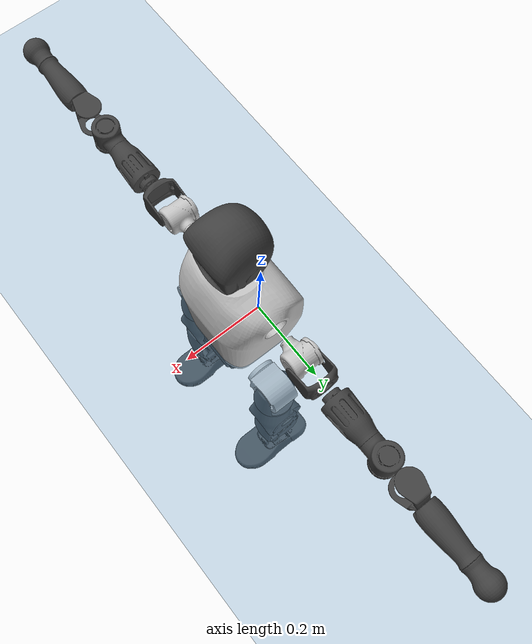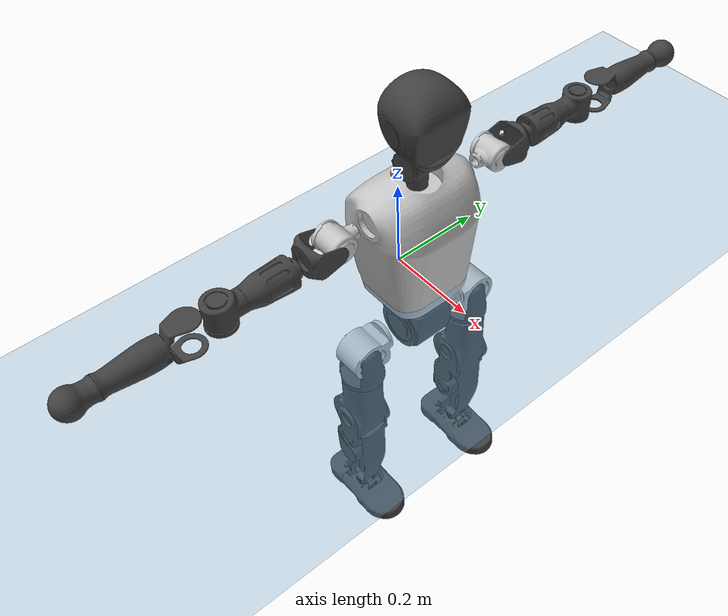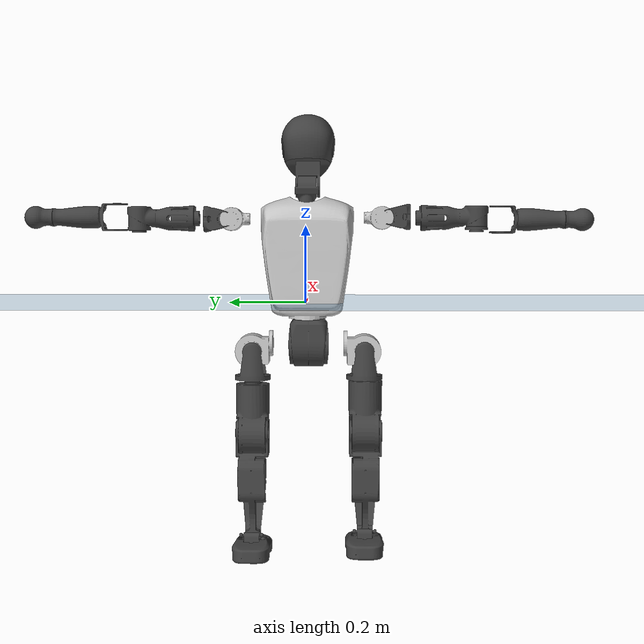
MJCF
<mujoco model="T1">
  <compiler angle="radian" assetdir="assets" balanceinertia="true" inertiafromgeom="false"/>

  <option timestep="0.005" density="1.2" viscosity="2e-05"/>

  <size nkey="1"/>

  <visual>
    <quality shadowsize="8192"/>
    <map shadowclip="0.5"/>
  </visual>

  <default>
    <default class="/">
      <joint armature="0.01" damping="0.01" frictionloss="0.1"/>
      <geom contype="0" conaffinity="0" group="1" solref="-1000 -80"/>
      <site size="0.01 0.005 0.005" group="5"/>
      <general forcelimited="true" biastype="affine" gainprm="25" biasprm="0 -25 -0.6"/>
      <default class="t1">
        <geom rgba="0.25 0.25 0.25 1"/>
        <default class="visual">
          <geom type="mesh" group="2"/>
        </default>
        <default class="collision">
          <geom group="3"/>
        </default>
        <default class="foot">
          <geom size="0.1115 0.05 0.015" type="box" condim="6" group="4" priority="1" solimp="0.015 1 0.015"/>
        </default>
        <default class="reward_collision_sphere">
          <geom group="5" rgba="1 0 0 1"/>
        </default>
      </default>
    </default>
  </default>

  <asset>
    <texture type="skybox" colorspace="auto" name="//unnamed_texture_0" builtin="gradient" rgb1="0.95 0.95 0.95" rgb2="0.95 0.95 0.95" width="100" height="600"/>
    <texture type="2d" colorspace="auto" name="texplane" builtin="checker" rgb1="0.345 0.575 0.748" rgb2="0.345 0.575 0.748" markrgb="1 1 1" width="512" height="512"/>
    <material name="MatPlane" class="/" texture="texplane" texuniform="true" texrepeat="2 2" specular="0.9"/>
    <mesh name="Trunk" class="/" file="Trunk.stl"/>
    <mesh name="H1" class="/" file="H1.stl"/>
    <mesh name="H2" class="/" file="H2.stl"/>
    <mesh name="AL1" class="/" file="AL1.stl"/>
    <mesh name="AL2" class="/" file="AL2.stl"/>
    <mesh name="AL3" class="/" file="AL3.stl"/>
    <mesh name="left_hand_link" class="/" file="left_hand_link.stl"/>
    <mesh name="AR1" class="/" file="AR1.stl"/>
    <mesh name="AR2" class="/" file="AR2.stl"/>
    <mesh name="AR3" class="/" file="AR3.stl"/>
    <mesh name="right_hand_link" class="/" file="right_hand_link.stl"/>
    <mesh name="Waist" class="/" file="Waist.stl"/>
    <mesh name="Hip_Pitch_Left" class="/" file="Hip_Pitch_Left.stl"/>
    <mesh name="Hip_Roll_Left" class="/" file="Hip_Roll_Left.stl"/>
    <mesh name="Hip_Yaw_Left" class="/" file="Hip_Yaw_Left.stl"/>
    <mesh name="Shank_Left" class="/" file="Shank_Left.stl"/>
    <mesh name="Ankle_Cross_Left" class="/" file="Ankle_Cross_Left.stl"/>
    <mesh name="left_foot_link" class="/" file="left_foot_link.stl"/>
    <mesh name="Hip_Pitch_Right" class="/" file="Hip_Pitch_Right.stl"/>
    <mesh name="Hip_Roll_Right" class="/" file="Hip_Roll_Right.stl"/>
    <mesh name="Hip_Yaw_Right" class="/" file="Hip_Yaw_Right.stl"/>
    <mesh name="Shank_Right" class="/" file="Shank_Right.stl"/>
    <mesh name="Ankle_Cross_Right" class="/" file="Ankle_Cross_Right.stl"/>
    <mesh name="right_foot_link" class="/" file="right_foot_link.stl"/>
  </asset>

  <worldbody>
    <geom name="floor" class="/" size="100 100 0.125" type="plane" group="0" material="MatPlane"/>
    <light name="toplight_shadow" class="/" pos="0 0 5" dir="0.0990148 0.0990148 -0.990148" type="directional" ambient="0.04 0.04 0.04" diffuse="0.55 0.55 0.55" specular="0.12 0.12 0.12"/>
    <light name="toplight_fill" class="/" pos="0 0 5" dir="0.0990148 0.0990148 -0.990148" type="directional" castshadow="false" ambient="0.04 0.04 0.04" diffuse="0.3 0.3 0.3" specular="0.08 0.08 0.08"/>
    <body name="trunk" childclass="t1" pos="0.000430104 -0.00235645 -0.00248347" quat="1 0.000150513 0.000112768 -6.45154e-05">
      <inertial pos="0.0543793 -0.00425567 0.103725" quat="0.999962 -0.000625808 -0.00850694 0.00167752" mass="16.7364" diaginertia="0.0815756 0.435574 0.0551865"/>
      <joint name="//unnamed_joint_0" type="free" armature="0" damping="0" frictionloss="0"/>
      <geom name="//unnamed_geom_1" class="visual" rgba="0.76 0.76 0.76 1" mesh="Trunk"/>
      <geom name="//unnamed_geom_2" class="collision" size="0.0852509 0.113668 0.170502" pos="0.0589046 0 0.12114" type="box"/>
      <geom name="//unnamed_geom_3" class="reward_collision_sphere" size="0.130718" pos="0.0589046 0 0.10095"/>
      <geom name="//unnamed_geom_4" class="reward_collision_sphere" size="0.0170502" pos="0.0589046 0.120597 0"/>
      <geom name="//unnamed_geom_5" class="reward_collision_sphere" size="0.0170502" pos="0.0589046 -0.120597 0"/>
      <geom name="//unnamed_geom_6" class="reward_collision_sphere" size="0.0170502" pos="0.0589046 0.15181 0.181711"/>
      <geom name="//unnamed_geom_7" class="reward_collision_sphere" size="0.0170502" pos="0.0589046 -0.15181 0.181711"/>
      <site name="imu" pos="-0.00562622 -0.00882331 0.0129203" size="0.0113668"/>
      <camera name="track" pos="0 -2.83757 0" quat="0.707107 0.707107 0 0" mode="trackcom"/>
      <camera name="ego_camera" pos="0.119773 0 0.423992" quat="-0.5 -0.5 0.5 0.5"/>
      <body name="H1" pos="0.0583443 0.00166366 0.242991" quat="1 9.67165e-05 6.7512e-05 -0.000115999">
        <inertial pos="-0.000840761 -0.00636381 0.0556775" quat="0.769157 -0.0179764 0.00535397 0.638785" mass="0.65301" diaginertia="0.000228058 0.00127822 0.000154608"/>
        <joint name="AAHead_yaw" pos="0 0 0" axis="0.00327588 -0.0099035 0.999946" range="-1.57038 1.62255" armature="0.0109598" damping="0.00918209" frictionloss="0.14085"/>
        <geom name="//unnamed_geom_8" class="visual" mesh="H1"/>
        <body name="H2" pos="0.00173473 -0.00252509 0.0637003" quat="1 -6.84993e-05 9.78226e-06 0.000203552">
          <inertial pos="0.00439204 0.00453976 0.09713" quat="0.989268 0.105407 -0.0601789 -0.0813472" mass="0.927245" diaginertia="0.00185481 0.0111197 0.00180063"/>
          <joint name="Head_pitch" pos="0 0 0" axis="0.00761051 -0.999931 0.00891399" range="-1.22805 0.358786" armature="0.0119266" damping="0.00676881" frictionloss="0.11105"/>
          <geom name="//unnamed_geom_9" class="visual" mesh="H2"/>
          <geom name="//unnamed_geom_10" class="collision" size="0.0909342" pos="0.00981744 0 0.111045"/>
          <geom name="//unnamed_geom_11" class="reward_collision_sphere" size="0.102301" pos="0.0196349 0 0.10095"/>
        </body>
      </body>
      <body name="AL1" pos="0.0566107 0.152232 0.21983" quat="1 -0.000718551 -0.00054653 -0.000123229">
        <inertial pos="-0.0011651 0.0618474 -0.00227811" quat="0.506357 0.490011 -0.515475 0.487625" mass="0.77096" diaginertia="0.00127279 0.00711399 0.000307552"/>
        <joint name="Left_Shoulder_Pitch" pos="0 0 0" axis="-0.0010284 0.999999 0.00125795" range="-3.25229 1.18879" armature="0.011159" damping="0" frictionloss="0.111266"/>
        <geom name="//unnamed_geom_12" class="visual" rgba="0.76 0.76 0.76 1" mesh="AL1"/>
        <body name="AL2" pos="0.00141978 0.0652952 -0.000303267" quat="1 6.81364e-05 -1.63547e-06 6.71762e-06">
          <inertial pos="0.001047 0.049803 0.00117388" quat="0.486151 0.494279 -0.499153 0.5198" mass="0.243179" diaginertia="0.000368043 0.00200844 0.000181155"/>
          <joint name="Left_Shoulder_Roll" pos="0 0 0" axis="-0.999984 0.00506917 -0.00236119" stiffness="0.00141309" range="-1.56437 1.74526" armature="0.0130907" damping="0.0110556" frictionloss="0.0997085"/>
          <geom name="//unnamed_geom_13" class="visual" mesh="AL2"/>
          <body name="AL3" pos="-0.000105167 0.0813469 0.00163511" quat="1 -1.56464e-06 -4.92371e-05 3.39263e-05">
            <inertial pos="0.00316238 0.121679 -0.00103516" quat="0.706806 0.707406 0.000461489 0.00164002" mass="1.46436" diaginertia="0.0111675 0.0744722 0.0006608"/>
            <joint name="Left_Elbow_Pitch" pos="0 0 0" axis="0.00383564 -0.999965 0.00750132" stiffness="0.00527811" range="-2.232 2.21051" armature="0.00993663" damping="0.0115376" frictionloss="0.116397"/>
            <geom name="//unnamed_geom_14" class="visual" mesh="AL3"/>
            <geom name="//unnamed_geom_15" class="collision" size="0.0341003 0.0852509" pos="0 0.0709393 0" quat="0.707105 0.707108 0 0" type="cylinder"/>
            <geom name="//unnamed_geom_16" class="reward_collision_sphere" size="0.0409204"/>
            <body name="left_hand_link" pos="0.00194933 0.205944 0.00369492" quat="0.999999 -0.000515579 0.000275327 -0.000934876">
              <inertial pos="0.00047368 0.153654 0.00152062" quat="0.710437 0.703649 0.00194553 -0.0124024" mass="0.492762" diaginertia="0.00754511 0.0467621 0.00021954"/>
              <joint name="Left_Elbow_Yaw" pos="0 0 0" axis="-0.0097851 0.00209889 0.99995" range="-2.3849 -0.00669744" armature="0.0115385" damping="0.0304008" frictionloss="0.108315"/>
              <geom name="//unnamed_geom_17" class="visual" mesh="left_hand_link"/>
              <geom name="//unnamed_geom_18" class="collision" size="0.0341003 0.0994593" pos="0 0.184442 0" quat="0.707105 0.707108 0 0" type="cylinder"/>
              <geom name="//unnamed_geom_19" class="reward_collision_sphere" size="0.0568339"/>
              <geom name="//unnamed_geom_20" class="reward_collision_sphere" size="0.0397837" pos="0 0.156067 0"/>
              <geom name="//unnamed_geom_21" class="reward_collision_sphere" size="0.0397837" pos="0 0.305039 0"/>
            </body>
          </body>
        </body>
      </body>
      <body name="AR1" pos="0.0590918 -0.149741 0.222879" quat="1 0.000176043 0.000419872 0.000121002">
        <inertial pos="-0.0016312 -0.0645101 0.003011" quat="0.505664 0.500009 -0.510719 0.483179" mass="0.782826" diaginertia="0.00127453 0.00780647 0.00031552"/>
        <joint name="Right_Shoulder_Pitch" pos="0 0 0" axis="0.00443894 -0.999989 -0.00143582" range="-1.21561 3.32565" armature="0.0122006" damping="0.0205588" frictionloss="0.133789"/>
        <geom name="//unnamed_geom_22" class="visual" rgba="0.76 0.76 0.76 1" mesh="AR1"/>
        <body name="AR2" pos="0.0035193 -0.0660835 0.00264013" quat="1 0.000172464 -0.000163024 -0.000704304">
          <inertial pos="0.00259047 -0.0494851 0.00277818" quat="0.512483 0.478585 -0.522889 0.48467" mass="0.245542" diaginertia="0.000381372 0.00209489 0.000192196"/>
          <joint name="Right_Shoulder_Roll" pos="0 0 0" axis="-0.999981 9.41095e-05 -0.00612675" range="-1.73019 1.5824" armature="0.0112146" damping="0.0284516" frictionloss="0.128344"/>
          <geom name="//unnamed_geom_23" class="visual" mesh="AR2"/>
          <body name="AR3" pos="0.00276421 -0.0838149 -0.00229281" quat="1 0.000359563 -0.000222924 -0.000140733">
            <inertial pos="0.00242406 -0.122354 -0.00242868" quat="0.709014 0.705192 -0.000846979 -0.00163265" mass="1.52236" diaginertia="0.0118716 0.0781295 0.000638992"/>
            <joint name="Right_Elbow_Pitch" pos="0 0 0" axis="0.00157486 0.999929 -0.0118498" range="-2.30949 2.31753" armature="0.0114608" damping="0.0107042" frictionloss="0.127265"/>
            <geom name="//unnamed_geom_24" class="visual" mesh="AR3"/>
            <geom name="//unnamed_geom_25" class="collision" size="0.0341003 0.0852509" pos="0 -0.0709393 0" quat="0.707105 0.707108 0 0" type="cylinder"/>
            <geom name="//unnamed_geom_26" class="reward_collision_sphere" size="0.0409204"/>
            <body name="right_hand_link" pos="0.00118981 -0.209377 -0.00408685" quat="1 0.00016833 1.83236e-05 -0.000123451">
              <inertial pos="3.95303e-05 -0.155393 0.00284647" quat="0.701189 0.712905 -0.00299498 -0.00961618" mass="0.472271" diaginertia="0.00778864 0.0489528 0.00022376"/>
              <joint name="Right_Elbow_Yaw" pos="0 0 0" axis="-0.000513811 -0.000434779 1" range="0.00636877 2.45201" armature="0.0107725" damping="0.0179439" frictionloss="0.0956677"/>
              <geom name="//unnamed_geom_27" class="visual" mesh="right_hand_link"/>
              <geom name="//unnamed_geom_28" class="collision" size="0.0341003 0.0994593" pos="0 -0.184442 0" quat="0.707105 0.707108 0 0" type="cylinder"/>
              <geom name="//unnamed_geom_29" class="reward_collision_sphere" size="0.0568339"/>
              <geom name="//unnamed_geom_30" class="reward_collision_sphere" size="0.0397837" pos="0 -0.156067 0"/>
              <geom name="//unnamed_geom_31" class="reward_collision_sphere" size="0.0397837" pos="0 -0.305039 0"/>
            </body>
          </body>
        </body>
      </body>
      <body name="Waist" pos="0.0613015 -0.00380814 -0.112393" quat="0.999999 -9.2588e-05 -0.00104643 0.000510461">
        <inertial pos="0.00725843 0.00226775 0.00996526" quat="0.983633 0.00645037 -0.180051 -0.0023543" mass="3.76568" diaginertia="0.00508362 0.0299412 0.00505635"/>
        <joint name="Waist" pos="0 0 0" axis="0.00614337 -0.0113631 0.999917" range="-1.59412 1.55199" armature="0.0113717" damping="0.0176555" frictionloss="0.115221"/>
        <geom name="//unnamed_geom_32" class="visual" mesh="Waist"/>
        <body name="Hip_Pitch_Left" pos="0.00275858 0.151261 0.00270379" quat="0.999999 -0.000502315 0.000824371 -0.00103817">
          <inertial pos="-0.000175526 -0.0114355 -0.0182798" quat="0.975049 0.221072 0.0197685 0.00388908" mass="1.42377" diaginertia="0.00162401 0.00832548 0.00128683"/>
          <joint name="Left_Hip_Pitch" pos="0 0 0" axis="-0.000742682 1 0.000528184" stiffness="0.00423089" range="-1.80989 1.51137" armature="0.0093992" damping="0.018294" frictionloss="0.127318"/>
          <geom name="//unnamed_geom_33" class="visual" rgba="0.76 0.76 0.76 1" mesh="Hip_Pitch_Left"/>
          <body name="Hip_Roll_Left" pos="-0.00300313 -0.00180939 -0.020552" quat="1 -7.59135e-05 3.15783e-05 0.000479345">
            <inertial pos="-0.000490963 0.000112476 -0.0523888" quat="0.697765 -0.00987021 -0.0184927 0.71602" mass="0.60788" diaginertia="0.00166288 0.00914635 0.000551661"/>
            <joint name="Left_Hip_Roll" pos="0 0 0" axis="-0.999959 -0.0055058 -0.00713426" range="-1.57334 0.24899" armature="0.00984158" damping="0" frictionloss="0.107144"/>
            <geom name="//unnamed_geom_34" class="visual" mesh="Hip_Roll_Left"/>
            <geom name="//unnamed_geom_35" class="reward_collision_sphere" size="0.0625173"/>
            <body name="Hip_Yaw_Left" pos="-0.000141896 0.000369834 -0.0881549" quat="0.999999 -0.000484191 -0.000706669 -0.000761145">
              <inertial pos="-0.00522606 0.00252162 -0.0925235" quat="0.695678 -0.0365329 -0.0234606 0.717041" mass="3.09714" diaginertia="0.0232906 0.152217 0.00270072"/>
              <joint name="Left_Hip_Yaw" pos="0 0 0" axis="0.00831522 0.000254436 -0.999965" range="-1.02827 0.95785" armature="0.0109772" damping="0" frictionloss="0.118403"/>
              <geom name="//unnamed_geom_36" class="visual" mesh="Hip_Yaw_Left"/>
              <geom name="//unnamed_geom_37" class="collision" size="0.0568339 0.0909342" type="cylinder"/>
              <body name="Shank_Left" pos="-0.0177581 0.000869012 -0.129225" quat="1 -0.000169037 0.000433485 -0.000461682">
                <inertial pos="-0.00823827 -0.00134034 -0.127837" quat="0.997547 0.0016804 -0.0231284 0.0660464" mass="2.68835" diaginertia="0.0314147 0.193967 0.0020105"/>
                <joint name="Left_Knee_Pitch" pos="0 0 0" axis="-0.0177191 0.999841 -0.00216552" stiffness="0.0010491" range="0.0316832 2.30096" armature="0.0116223" damping="0.0080149" frictionloss="0.0992872"/>
                <geom name="//unnamed_geom_38" class="visual" mesh="Shank_Left"/>
                <geom name="//unnamed_geom_39" class="collision" size="0.0568339 0.0852509" pos="0 0 -0.12114" type="cylinder"/>
                <geom name="//unnamed_geom_40" class="reward_collision_sphere" size="0.0738841"/>
                <body name="Ankle_Cross_Left" pos="0.0031951 0.00133141 -0.285557" quat="1 0.000670438 -0.000358654 -0.000584585">
                  <inertial pos="-0.00545931 -0.000348601 -0.00680066" quat="0.444761 0.549069 0.550327 0.444805" mass="0.103848" diaginertia="2.54086e-05 0.000143646 1.17189e-05"/>
                  <joint name="Left_Ankle_Pitch" pos="0 0 0" axis="-0.000321308 1 0.000339523" stiffness="0.00226531" range="-0.928554 0.393878" armature="0.0106014" damping="0" frictionloss="0.128095"/>
                  <geom name="//unnamed_geom_41" class="visual" mesh="Ankle_Cross_Left"/>
                  <body name="left_foot_link" pos="-0.00317479 -1.91381e-05 -0.0161386" quat="1 -0.000776003 -0.000307653 -0.000110278">
                    <inertial pos="0.000401557 0.000176526 -0.00782776" quat="0.0114899 0.624912 -0.00124678 0.78061" mass="1.04078" diaginertia="0.00259841 0.0142345 0.00221357"/>
                    <joint name="Left_Ankle_Roll" pos="0 0 0" axis="-0.999941 0.0102817 0.00338122" range="-0.419207 0.437405" armature="0.0113129" damping="0" frictionloss="0.114426"/>
                    <geom name="//unnamed_geom_42" class="visual" mesh="left_foot_link"/>
                    <geom name="left_foot" class="foot" size="0.122599 0.0455287 0.0176923" pos="0.00981744 0 -0.0151426"/>
                    <geom name="//unnamed_geom_44" class="reward_collision_sphere" size="0.0591073" pos="0.00981744 0 -0.0151426"/>
                    <geom name="//unnamed_geom_45" class="reward_collision_sphere" size="0.0341003" pos="0.0932657 -0.0326321 -0.0151426"/>
                    <geom name="//unnamed_geom_46" class="reward_collision_sphere" size="0.0341003" pos="-0.0687221 -0.0326321 -0.0151426"/>
                    <site name="left_foot" class="foot" pos="0.00981744 0 -0.0151426" size="0.0113668"/>
                  </body>
                </body>
              </body>
            </body>
          </body>
        </body>
        <body name="Hip_Pitch_Right" pos="-0.00191015 -0.147799 0.00249046" quat="0.999999 0.000468092 0.000604898 0.00107645">
          <inertial pos="0.00158568 0.00814999 -0.0201993" quat="0.975774 -0.218608 0.00861213 0.00100652" mass="1.50477" diaginertia="0.00165042 0.00814223 0.00138732"/>
          <joint name="Right_Hip_Pitch" pos="0 0 0" axis="0.00941075 -0.999946 0.0043691" stiffness="0.00926866" range="-1.57963 1.88091" armature="0.0112548" damping="0.0110854" frictionloss="0.110469"/>
          <geom name="//unnamed_geom_47" class="visual" rgba="0.76 0.76 0.76 1" mesh="Hip_Pitch_Right"/>
          <body name="Hip_Roll_Right" pos="-0.0035821 -0.000359472 -0.0182878" quat="1 0.000430696 -0.000579751 0.000351632">
            <inertial pos="0.000262333 0.0024213 -0.0536703" quat="0.707837 -0.0231291 -0.012732 0.705882" mass="0.555074" diaginertia="0.00158243 0.00862153 0.000550056"/>
            <joint name="Right_Hip_Roll" pos="0 0 0" axis="-0.999981 0.00579516 -0.00207358" stiffness="0.000688824" range="-0.291863 1.5128" armature="0.0113038" damping="0.00682483" frictionloss="0.121654"/>
            <geom name="//unnamed_geom_48" class="visual" mesh="Hip_Roll_Right"/>
            <geom name="//unnamed_geom_49" class="reward_collision_sphere" size="0.0625173"/>
            <body name="Hip_Yaw_Right" pos="-0.00125618 -0.00259018 -0.0802292" quat="1 0.000270049 0.000123739 0.000876522">
              <inertial pos="-0.00797613 -0.00142748 -0.0869882" quat="0.719106 -0.026592 -0.0241202 0.693973" mass="3.39072" diaginertia="0.0243496 0.152174 0.00277547"/>
              <joint name="Right_Hip_Yaw" pos="0 0 0" axis="0.0159283 -0.0183011 -0.999706" range="-0.968307 1.05026" armature="0.0102584" damping="0.0305295" frictionloss="0.112642"/>
              <geom name="//unnamed_geom_50" class="visual" mesh="Hip_Yaw_Right"/>
              <geom name="//unnamed_geom_51" class="collision" size="0.0568339 0.0909342" type="cylinder"/>
              <body name="Shank_Right" pos="-0.0130377 -0.00126305 -0.137137" quat="1 0.000498437 -8.24852e-06 6.96462e-05">
                <inertial pos="-0.0057057 -0.00173677 -0.122915" quat="0.999142 -0.00576893 -0.0284746 -0.0295159" mass="2.47527" diaginertia="0.0293023 0.186934 0.0019413"/>
                <joint name="Right_Knee_Pitch" pos="0 0 0" axis="-0.00551133 -0.999985 0.000119957" range="-2.39678 0.0379419" armature="0.00933854" damping="0.0121221" frictionloss="0.111961"/>
                <geom name="//unnamed_geom_52" class="visual" mesh="Shank_Right"/>
                <geom name="//unnamed_geom_53" class="collision" size="0.0568339 0.0852509" pos="0 0 -0.12114" type="cylinder"/>
                <geom name="//unnamed_geom_54" class="reward_collision_sphere" size="0.0738841"/>
                <body name="Ankle_Cross_Right" pos="-0.00068643 0.00229933 -0.279472" quat="1 -1.94197e-05 -4.11758e-06 -7.06418e-05">
                  <inertial pos="-0.00292701 -0.000420849 -0.00831224" quat="0.433523 0.555635 0.550089 0.448028" mass="0.111905" diaginertia="2.59009e-05 0.000144648 1.23833e-05"/>
                  <joint name="Right_Ankle_Pitch" pos="0 0 0" axis="-0.00658784 -0.999978 -0.000170174" stiffness="0.010709" range="-0.314172 0.910173" armature="0.0114315" damping="0.0174443" frictionloss="0.0993491"/>
                  <geom name="//unnamed_geom_55" class="visual" mesh="Ankle_Cross_Right"/>
                  <body name="right_foot_link" pos="-0.00283297 -0.000488879 -0.0116135" quat="1 -8.5419e-05 -2.17157e-05 -0.000226912">
                    <inertial pos="0.00377585 -0.00244077 -0.00940299" quat="-0.00323762 0.619517 -0.000874231 0.784976" mass="1.00264" diaginertia="0.00248014 0.0138243 0.00232106"/>
                    <joint name="Right_Ankle_Roll" pos="0 0 0" axis="-1 -6.07877e-05 0.00058424" range="-0.37218 0.434449" armature="0.0122344" damping="0.0220618" frictionloss="0.125023"/>
                    <geom name="//unnamed_geom_56" class="visual" mesh="right_foot_link"/>
                    <geom name="right_foot" class="foot" size="0.0966443 0.049852 0.0155936" pos="0.00981744 0 -0.0151426"/>
                    <geom name="//unnamed_geom_58" class="reward_collision_sphere" size="0.0454671"/>
                    <geom name="//unnamed_geom_59" class="reward_collision_sphere" size="0.0341003" pos="0.00981744 0 -0.0151426"/>
                    <geom name="//unnamed_geom_60" class="reward_collision_sphere" size="0.0341003" pos="0.0932657 0.0326321 -0.0151426"/>
                    <geom name="//unnamed_geom_61" class="reward_collision_sphere" size="0.0341003" pos="-0.0687221 0.0326321 -0.0151426"/>
                    <site name="right_foot" class="foot" pos="0.00981744 0 -0.0151426" size="0.0113668"/>
                  </body>
                </body>
              </body>
            </body>
          </body>
        </body>
      </body>
    </body>
  </worldbody>

  <contact>
    <pair class="/" geom1="floor" geom2="left_foot" name="//unnamed_contact_0"/>
    <pair class="/" geom1="floor" geom2="right_foot" name="//unnamed_contact_1"/>
  </contact>

  <actuator>
    <general name="AAHead_yaw" class="/" joint="AAHead_yaw" forcerange="-8.75292 8.75292" gainprm="28.6319" biasprm="0 -28.6319 -0.62433"/>
    <general name="Head_pitch" class="/" joint="Head_pitch" forcerange="-8.07818 8.07818" gainprm="28.6319" biasprm="0 -28.6319 -0.62433"/>
    <general name="Left_Shoulder_Pitch" class="/" joint="Left_Shoulder_Pitch" forcerange="-19.5335 19.5335" gainprm="28.6319" biasprm="0 -28.6319 -0.62433"/>
    <general name="Left_Shoulder_Roll" class="/" joint="Left_Shoulder_Roll" forcerange="-18.3544 18.3544" gainprm="28.6319" biasprm="0 -28.6319 -0.62433"/>
    <general name="Left_Elbow_Pitch" class="/" joint="Left_Elbow_Pitch" forcerange="-20.4942 20.4942" gainprm="28.6319" biasprm="0 -28.6319 -0.62433"/>
    <general name="Left_Elbow_Yaw" class="/" joint="Left_Elbow_Yaw" forcerange="-18.6661 18.6661" gainprm="28.6319" biasprm="0 -28.6319 -0.62433"/>
    <general name="Right_Shoulder_Pitch" class="/" joint="Right_Shoulder_Pitch" forcerange="-22.6932 22.6932" gainprm="28.6319" biasprm="0 -28.6319 -0.62433"/>
    <general name="Right_Shoulder_Roll" class="/" joint="Right_Shoulder_Roll" forcerange="-19.4712 19.4712" gainprm="28.6319" biasprm="0 -28.6319 -0.62433"/>
    <general name="Right_Elbow_Pitch" class="/" joint="Right_Elbow_Pitch" forcerange="-18.1809 18.1809" gainprm="28.6319" biasprm="0 -28.6319 -0.62433"/>
    <general name="Right_Elbow_Yaw" class="/" joint="Right_Elbow_Yaw" forcerange="-22.2785 22.2785" gainprm="28.6319" biasprm="0 -28.6319 -0.62433"/>
    <general name="Waist" class="/" joint="Waist" forcerange="-37.4638 37.4638" gainprm="28.6319" biasprm="0 -28.6319 -0.62433"/>
    <general name="Left_Hip_Pitch" class="/" joint="Left_Hip_Pitch" forcerange="-50.5612 50.5612" gainprm="28.6319" biasprm="0 -28.6319 -0.62433"/>
    <general name="Left_Hip_Roll" class="/" joint="Left_Hip_Roll" forcerange="-33.2109 33.2109" gainprm="28.6319" biasprm="0 -28.6319 -0.62433"/>
    <general name="Left_Hip_Yaw" class="/" joint="Left_Hip_Yaw" forcerange="-35.7616 35.7616" gainprm="28.6319" biasprm="0 -28.6319 -0.62433"/>
    <general name="Left_Knee_Pitch" class="/" joint="Left_Knee_Pitch" forcerange="-72.6346 72.6346" gainprm="28.6319" biasprm="0 -28.6319 -0.62433"/>
    <general name="Left_Ankle_Pitch" class="/" joint="Left_Ankle_Pitch" forcerange="-23.5026 23.5026" gainprm="28.6319" biasprm="0 -28.6319 -0.62433"/>
    <general name="Left_Ankle_Roll" class="/" joint="Left_Ankle_Roll" forcerange="-15.753 15.753" gainprm="28.6319" biasprm="0 -28.6319 -0.62433"/>
    <general name="Right_Hip_Pitch" class="/" joint="Right_Hip_Pitch" forcerange="-51.359 51.359" gainprm="28.6319" biasprm="0 -28.6319 -0.62433"/>
    <general name="Right_Hip_Roll" class="/" joint="Right_Hip_Roll" forcerange="-33.1037 33.1037" gainprm="28.6319" biasprm="0 -28.6319 -0.62433"/>
    <general name="Right_Hip_Yaw" class="/" joint="Right_Hip_Yaw" forcerange="-29.7263 29.7263" gainprm="28.6319" biasprm="0 -28.6319 -0.62433"/>
    <general name="Right_Knee_Pitch" class="/" joint="Right_Knee_Pitch" forcerange="-67.8679 67.8679" gainprm="28.6319" biasprm="0 -28.6319 -0.62433"/>
    <general name="Right_Ankle_Pitch" class="/" joint="Right_Ankle_Pitch" forcerange="-20.702 20.702" gainprm="28.6319" biasprm="0 -28.6319 -0.62433"/>
    <general name="Right_Ankle_Roll" class="/" joint="Right_Ankle_Roll" forcerange="-16.4621 16.4621" gainprm="28.6319" biasprm="0 -28.6319 -0.62433"/>
  </actuator>

  <sensor>
    <gyro site="imu" name="imu_angular_velocity"/>
    <velocimeter site="imu" name="imu_linear_velocity"/>
    <framelinvel objtype="site" objname="left_foot" name="left_foot_global_linear_velocity"/>
    <framelinvel objtype="site" objname="right_foot" name="right_foot_global_linear_velocity"/>
  </sensor>

  <keyframe>
    <key name="home" qpos="0 0 0.6385 1 0 0 0 0 0 0 1.4 0 -0.4 0 -1.4 0 0.4 0 -0.4 0 0 0.8 -0.4 0 0.4 0 0 -0.8 0.4 0"/>
  </keyframe>
</mujoco>
